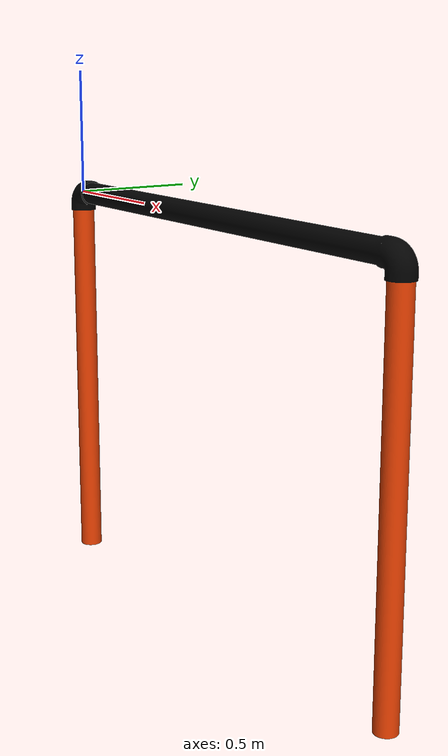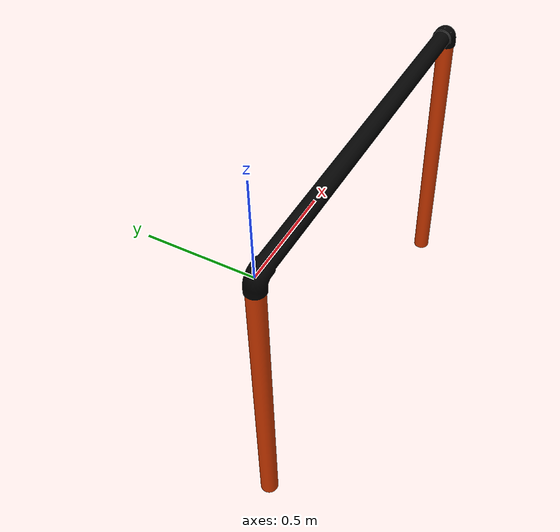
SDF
<?xml version="1.0" ?>
<sdf version="1.9">
    <model name="gate">
        <static>true</static>
        <link name="gate">
            <visual name="gate_visual">
                <geometry>
                    <mesh>
                        <uri>gate.dae</uri>
                    </mesh>
                </geometry>
            </visual>
            <collision name="gate_visual">
                <geometry>
                    <mesh>
                        <uri>gate.dae</uri>
                    </mesh>
                </geometry>
            </collision>
        </link>
    </model>
</sdf>
